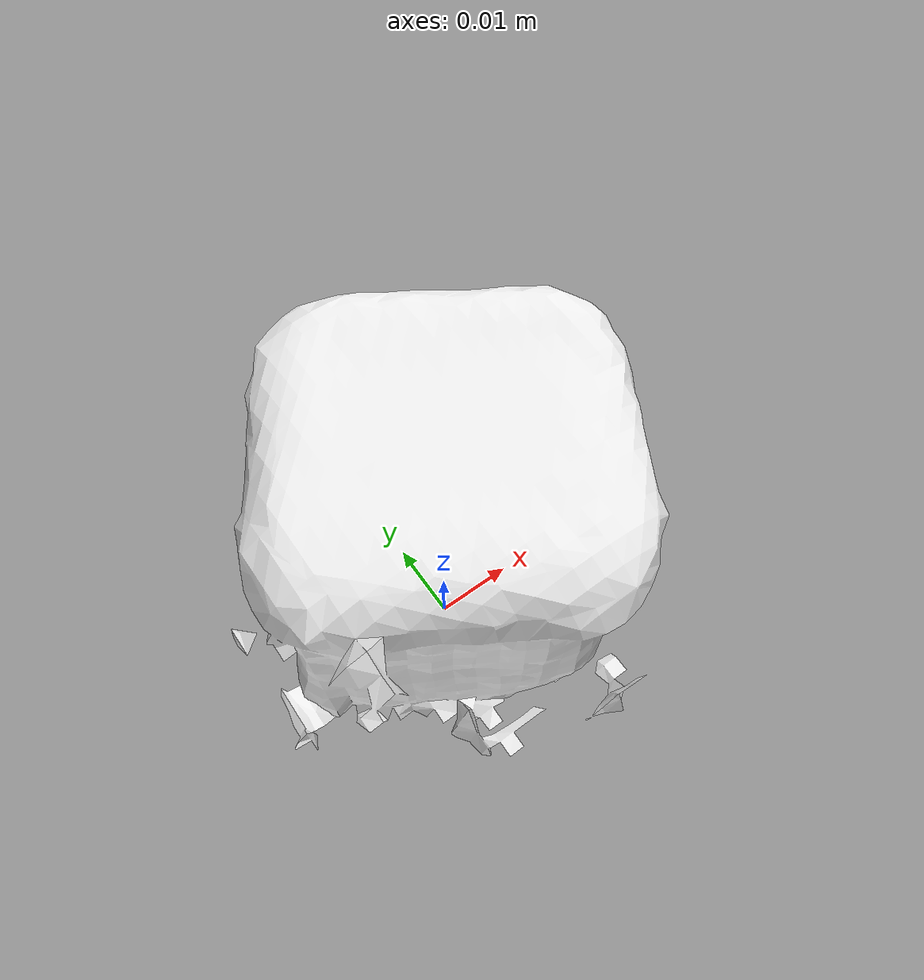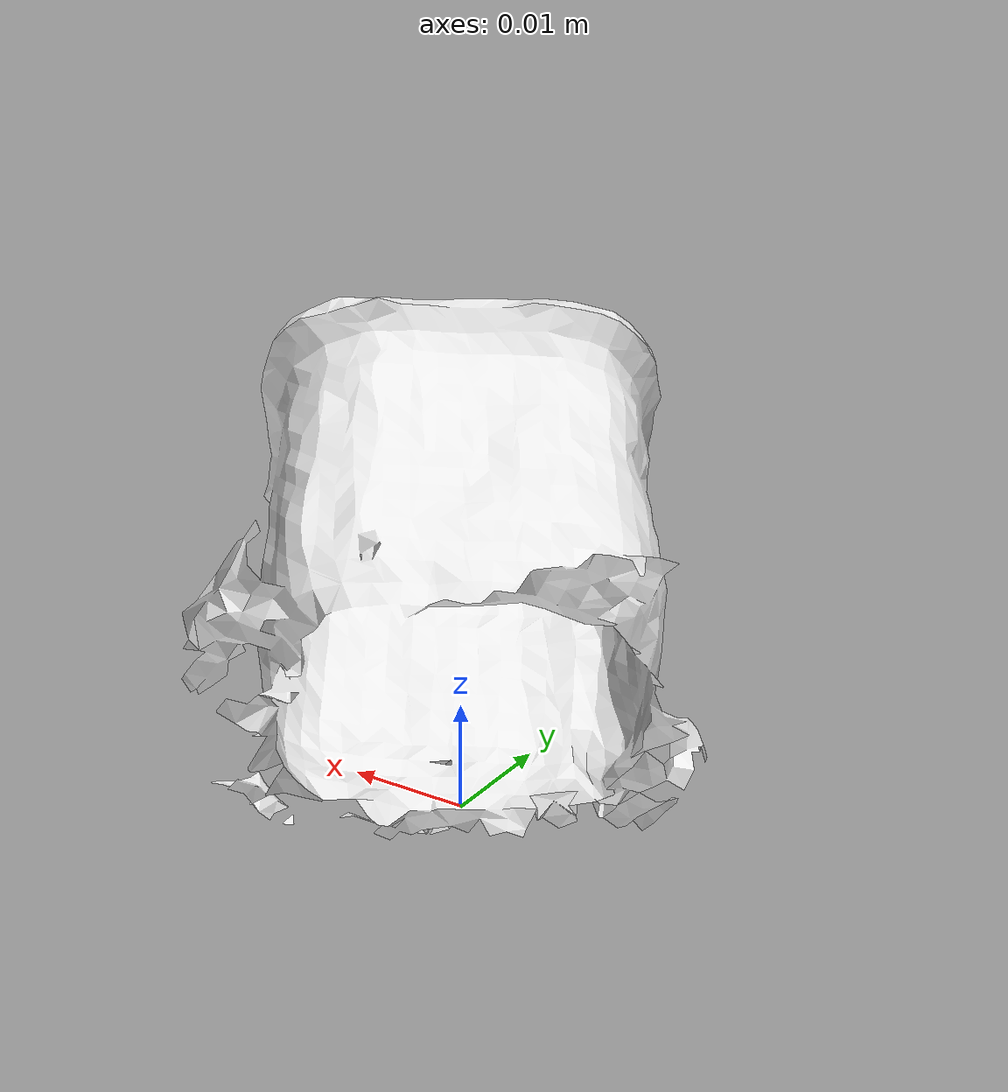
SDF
<?xml version='1.0'?>
<sdf version="1.4">
  <model name="white_rain_sensations_ocean_mist_hydrating_body_wash">
    <static>false</static>
    <link name="link">
      <inertial>
        <pose>0.005581057796808002 -0.0020797110544509994 0.10377342115057327 -3.138677090789318 -0.00890806891951005 -3.1193802400558432</pose>
        <mass>0.04433357927572857</mass>
        <inertia>
          <ixx>0.00015686779160070183</ixx>
          <ixy>-9.45117641752358e-21</ixy>
          <ixz>1.2299759424868291e-20</ixz>
          <iyy>0.00014973960144335969</iyy>
          <iyz>1.82231385358509e-20</iyz>
          <izz>1.720527797835237e-05</izz>
        </inertia>
      </inertial>
      <collision name="collision">
        <geometry>
          <mesh>
            <!-- Use a downsampled mesh for collisions -->
            <uri>model:///white_rain_sensations_ocean_mist_hydrating_body_wash/white_rain_sensations_ocean_mist_hydrating_body_wash_250_collision.obj</uri>
	        </mesh>
        </geometry>
        <surface>
      </surface>
      </collision>
      <visual name="visual">
        <geometry>
          <mesh>
            <uri>model:///white_rain_sensations_ocean_mist_hydrating_body_wash/optimized_tsdf_texture_mapped_mesh.obj</uri>
	        </mesh>
        </geometry>
        <material>
          <script>
            <uri>model:///white_rain_sensations_ocean_mist_hydrating_body_wash/white_rain_sensations_ocean_mist_hydrating_body_wash.material</uri>
            <name>white_rain_sensations_ocean_mist_hydrating_body_wash</name>
          </script>
        </material>
      </visual>
    </link>
  </model>
</sdf>
